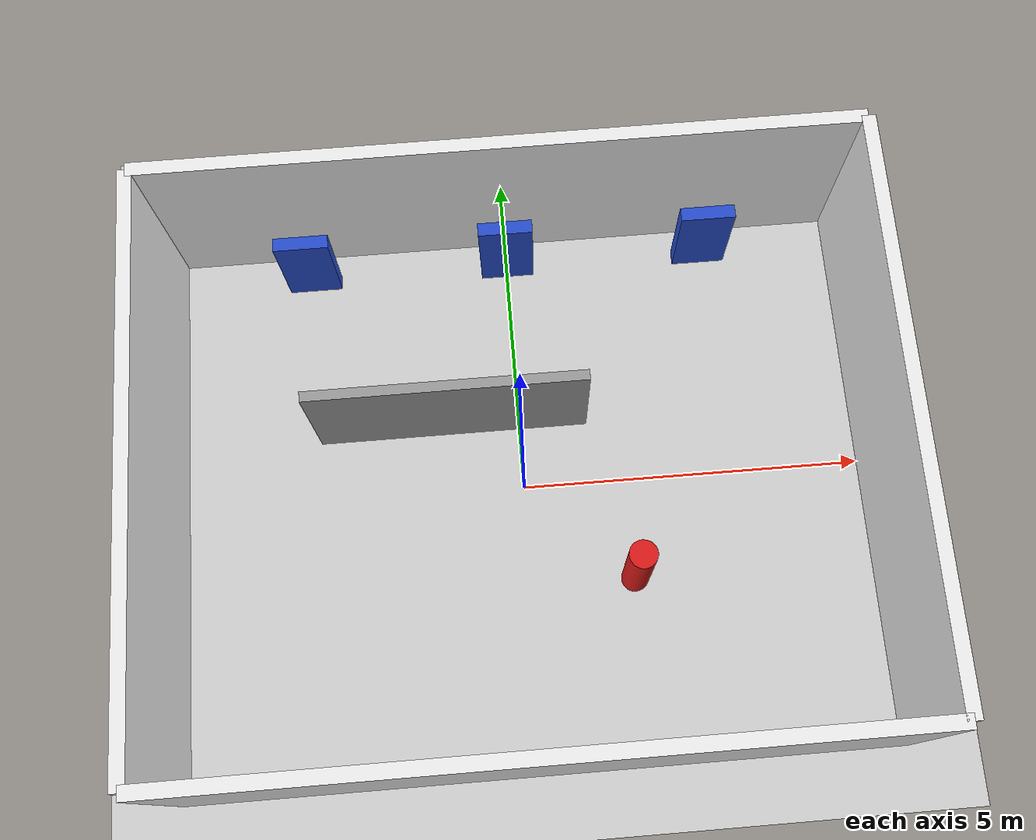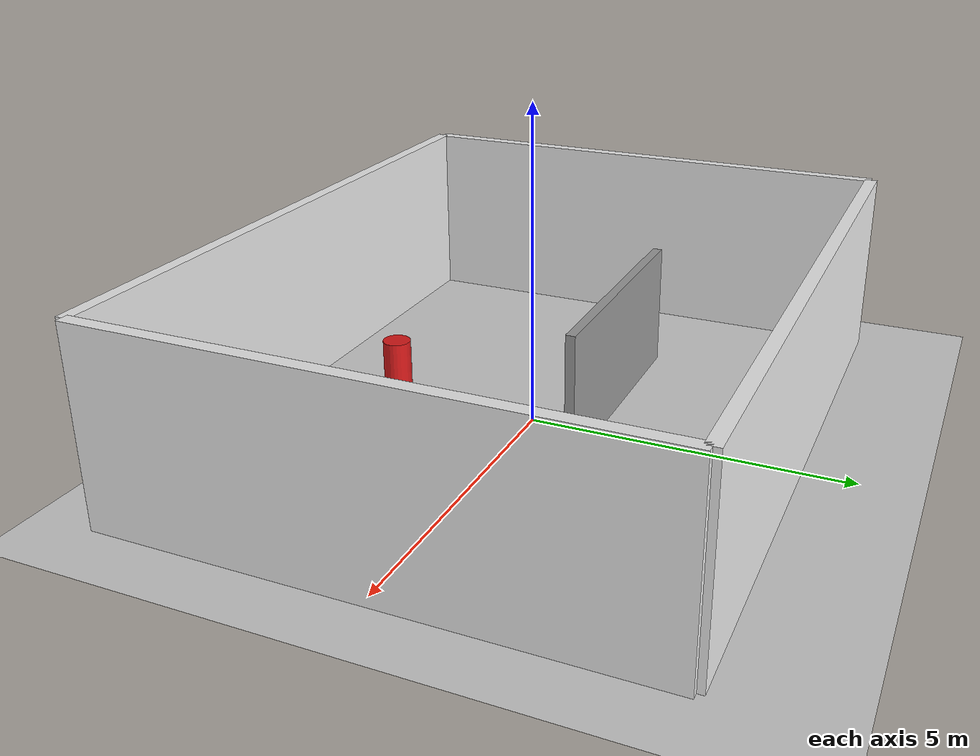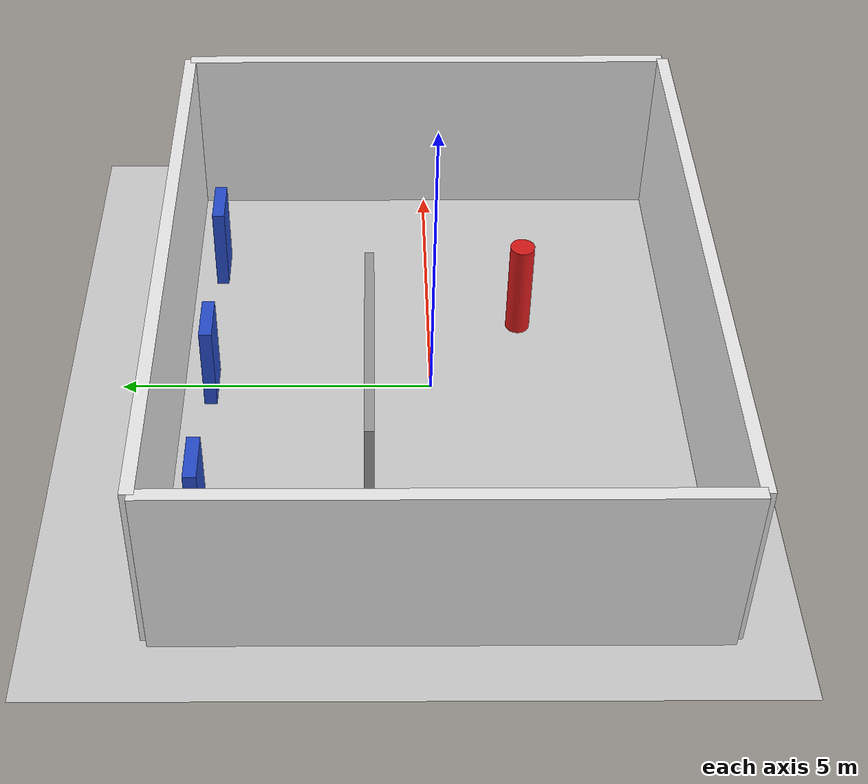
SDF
<sdf version="1.6">
 <world name="panel_room">
  <physics name="default_physics" default="0" type="ode">
   <max_step_size>0.001</max_step_size>
   <real_time_factor>1.0</real_time_factor>
   <real_time_update_rate>1000</real_time_update_rate>
  </physics>
  <plugin name="gazebo_ros_state" filename="libgazebo_ros_state.so">
   <ros><namespace>/gazebo</namespace></ros>
   <update_rate>10.0</update_rate>
  </plugin>
  <light name="sun" type="directional">
   <pose>0 0 10 0 0 0</pose>
   <diffuse>0.9 0.9 0.9 1</diffuse>
   <specular>0.3 0.3 0.3 1</specular>
   <direction>-0.5 0.1 -0.9</direction>
  </light>
  <light name="ceiling_light" type="point">
   <pose>0 0 3.8 0 0 0</pose>
   <diffuse>0.8 0.8 0.8 1</diffuse>
   <specular>0.1 0.1 0.1 1</specular>
   <attenuation>
    <range>20</range>
    <constant>0.5</constant>
    <linear>0.01</linear>
    <quadratic>0.001</quadratic>
   </attenuation>
  </light>
  <model name="ground_plane">
   <static>true</static>
   <link name="link">
    <collision name="collision">
     <geometry><plane><normal>0 0 1</normal></plane></geometry>
     <surface><friction><ode><mu>100</mu><mu2>50</mu2></ode></friction></surface>
    </collision>
    <visual name="visual">
     <cast_shadows>false</cast_shadows>
     <geometry><plane><normal>0 0 1</normal><size>20 20</size></plane></geometry>
     <material>
      <script><uri>file://media/materials/scripts/gazebo.material</uri><name>Gazebo/Grey</name></script>
     </material>
    </visual>
   </link>
  </model>
  <model name="wall_south">
   <static>true</static>
   <pose>0 -4.1 1.5 0 0 0</pose>
   <link name="link">
    <collision name="col"><geometry><box><size>10.2 0.2 3.0</size></box></geometry></collision>
    <visual name="vis">
     <geometry><box><size>10.2 0.2 3.0</size></box></geometry>
     <material><script><name>Gazebo/White</name></script></material>
    </visual>
   </link>
  </model>
  <model name="wall_north">
   <static>true</static>
   <pose>0 4.1 1.5 0 0 0</pose>
   <link name="link">
    <collision name="col"><geometry><box><size>10.2 0.2 3.0</size></box></geometry></collision>
    <visual name="vis">
     <geometry><box><size>10.2 0.2 3.0</size></box></geometry>
     <material><script><name>Gazebo/White</name></script></material>
    </visual>
   </link>
  </model>
  <model name="wall_west">
   <static>true</static>
   <pose>-5.1 0 1.5 0 0 0</pose>
   <link name="link">
    <collision name="col"><geometry><box><size>0.2 8.2 3.0</size></box></geometry></collision>
    <visual name="vis">
     <geometry><box><size>0.2 8.2 3.0</size></box></geometry>
     <material><script><name>Gazebo/White</name></script></material>
    </visual>
   </link>
  </model>
  <model name="wall_east">
   <static>true</static>
   <pose>5.1 0 1.5 0 0 0</pose>
   <link name="link">
    <collision name="col"><geometry><box><size>0.2 8.2 3.0</size></box></geometry></collision>
    <visual name="vis">
     <geometry><box><size>0.2 8.2 3.0</size></box></geometry>
     <material><script><name>Gazebo/White</name></script></material>
    </visual>
   </link>
  </model>
  <model name="partition_west">
   <static>true</static>
   <pose>-1.0 1.0 1.0 0 0 0</pose>
   <link name="link">
    <collision name="col"><geometry><box><size>4.0 0.15 2.0</size></box></geometry></collision>
    <visual name="vis">
     <geometry><box><size>4.0 0.15 2.0</size></box></geometry>
     <material><script><name>Gazebo/Grey</name></script></material>
    </visual>
   </link>
  </model>
  <model name="panel_01">
   <static>true</static>
   <pose>-3.0 3.55 0.75 0 0 0</pose>
   <link name="link">
    <collision name="col"><geometry><box><size>0.8 0.2 1.5</size></box></geometry></collision>
    <visual name="vis">
     <geometry><box><size>0.8 0.2 1.5</size></box></geometry>
     <material><script><name>Gazebo/Blue</name></script></material>
    </visual>
   </link>
  </model>
  <model name="panel_02">
   <static>true</static>
   <pose>0.0 3.55 0.75 0 0 0</pose>
   <link name="link">
    <collision name="col"><geometry><box><size>0.8 0.2 1.5</size></box></geometry></collision>
    <visual name="vis">
     <geometry><box><size>0.8 0.2 1.5</size></box></geometry>
     <material><script><name>Gazebo/Blue</name></script></material>
    </visual>
   </link>
  </model>
  <model name="panel_03">
   <static>true</static>
   <pose>3.0 3.55 0.75 0 0 0</pose>
   <link name="link">
    <collision name="col"><geometry><box><size>0.8 0.2 1.5</size></box></geometry></collision>
    <visual name="vis">
     <geometry><box><size>0.8 0.2 1.5</size></box></geometry>
     <material><script><name>Gazebo/Blue</name></script></material>
    </visual>
   </link>
  </model>
  <model name="wanderer">
   <pose>1.5 -1.5 0.85 0 0 0</pose>
   <link name="link">
    <inertial>
     <mass>70.0</mass>
     <inertia><ixx>1.0</ixx><ixy>0</ixy><ixz>0</ixz><iyy>1.0</iyy><iyz>0</iyz><izz>0.3</izz></inertia>
    </inertial>
    <collision name="col">
     <geometry><cylinder><radius>0.2</radius><length>1.7</length></cylinder></geometry>
    </collision>
    <visual name="vis">
     <geometry><cylinder><radius>0.2</radius><length>1.7</length></cylinder></geometry>
     <material><ambient>0.85 0.1 0.1 1</ambient><diffuse>0.85 0.1 0.1 1</diffuse></material>
    </visual>
   </link>
  </model>
 </world>
</sdf>
